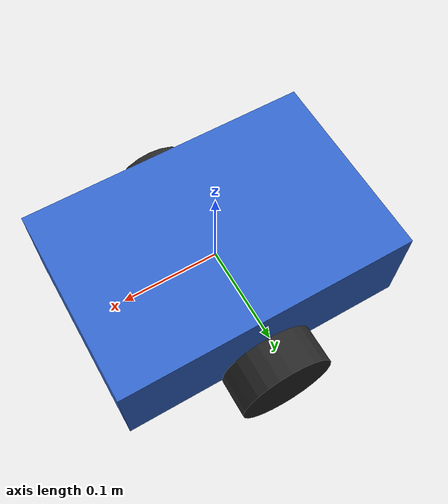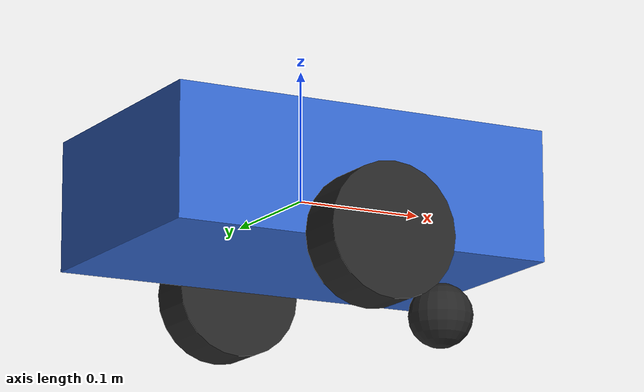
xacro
<?xml version="1.0"?>
<robot name="robo_diff" xmlns:xacro="http://www.ros.org/wiki/xacro">

  <!-- ========================== PROPRIEDADES ========================== -->
  <xacro:property name="raio_roda"    value="0.05"/>
  <xacro:property name="larg_roda"    value="0.04"/>
  <xacro:property name="base_x"       value="0.30"/>
  <xacro:property name="base_y"       value="0.20"/>
  <xacro:property name="base_z"       value="0.10"/>
  <xacro:property name="massa_base"   value="2.0"/>
  <xacro:property name="massa_roda"   value="0.3"/>
  <xacro:property name="raio_apoio"   value="0.025"/>

  <!-- posicoes derivadas: mudar raio_roda reposiciona tudo automaticamente -->
  <xacro:property name="z_eixo"   value="${-base_z/2}"/>
  <xacro:property name="y_roda"   value="${base_y/2 + larg_roda/2}"/>
  <xacro:property name="z_apoio"  value="${z_eixo - raio_roda + raio_apoio}"/>

  <material name="azul">
    <color rgba="0.20 0.40 0.80 1.0"/>
  </material>
  <material name="preto">
    <color rgba="0.15 0.15 0.15 1.0"/>
  </material>

  <!-- ============================= MACRO ============================== -->
  <!-- Uma unica definicao serve para as duas rodas: o lado entra
       como argumento e vale +1 (esquerda) ou -1 (direita).          -->
  <xacro:macro name="roda_tracao" params="nome lado">
    <link name="${nome}">
      <visual>
        <origin xyz="0 0 0" rpy="1.5708 0 0"/>
        <geometry>
          <cylinder radius="${raio_roda}" length="${larg_roda}"/>
        </geometry>
        <material name="preto"/>
      </visual>
      <collision>
        <origin xyz="0 0 0" rpy="1.5708 0 0"/>
        <geometry>
          <cylinder radius="${raio_roda}" length="${larg_roda}"/>
        </geometry>
      </collision>
      <inertial>
        <mass value="${massa_roda}"/>
        <inertia
          ixx="${massa_roda*(3*raio_roda*raio_roda + larg_roda*larg_roda)/12}"
          ixy="0.0" ixz="0.0"
          iyy="${massa_roda*(3*raio_roda*raio_roda + larg_roda*larg_roda)/12}"
          iyz="0.0"
          izz="${massa_roda*raio_roda*raio_roda/2}"/>
      </inertial>
    </link>

    <joint name="junta_${nome}" type="continuous">
      <parent link="base_link"/>
      <child  link="${nome}"/>
      <origin xyz="0 ${lado * y_roda} ${z_eixo}" rpy="0 0 0"/>
      <axis   xyz="0 1 0"/>
    </joint>
  </xacro:macro>

  <!-- ============================ CHASSI ============================== -->
  <link name="base_link">
    <visual>
      <geometry>
        <box size="${base_x} ${base_y} ${base_z}"/>
      </geometry>
      <material name="azul"/>
    </visual>
    <collision>
      <geometry>
        <box size="${base_x} ${base_y} ${base_z}"/>
      </geometry>
    </collision>
    <inertial>
      <mass value="${massa_base}"/>
      <inertia ixx="${massa_base*(base_y*base_y + base_z*base_z)/12}"
               ixy="0.0" ixz="0.0"
               iyy="${massa_base*(base_x*base_x + base_z*base_z)/12}"
               iyz="0.0"
               izz="${massa_base*(base_x*base_x + base_y*base_y)/12}"/>
    </inertial>
  </link>

  <!-- ============================= RODAS ============================== -->
  <xacro:roda_tracao nome="roda_esq" lado="1"/>
  <xacro:roda_tracao nome="roda_dir" lado="-1"/>

  <!-- ========================== RODA DE APOIO ========================= -->
  <link name="roda_apoio">
    <visual>
      <geometry>
        <sphere radius="${raio_apoio}"/>
      </geometry>
      <material name="preto"/>
    </visual>
    <collision>
      <geometry>
        <sphere radius="${raio_apoio}"/>
      </geometry>
    </collision>
    <inertial>
      <mass value="0.1"/>
      <inertia ixx="2.5e-5" ixy="0.0" ixz="0.0"
               iyy="2.5e-5" iyz="0.0" izz="2.5e-5"/>
    </inertial>
  </link>

  <joint name="junta_roda_apoio" type="fixed">
    <parent link="base_link"/>
    <child  link="roda_apoio"/>
    <origin xyz="${base_x/2 - 0.03} 0 ${z_apoio}" rpy="0 0 0"/>
  </joint>

</robot>
